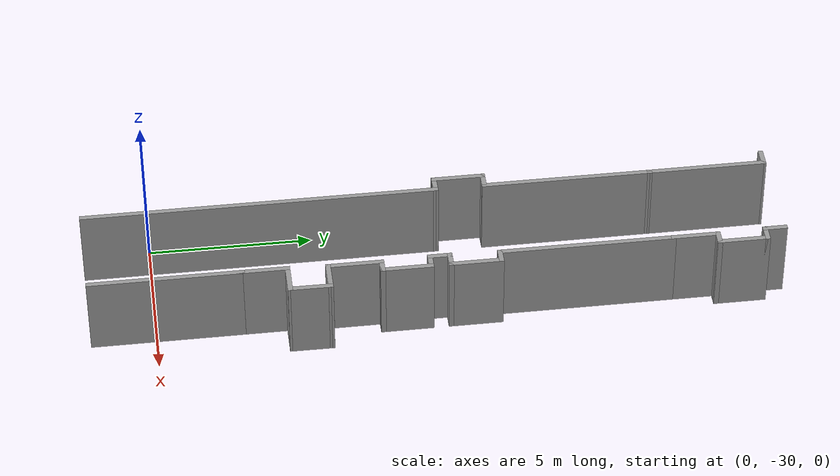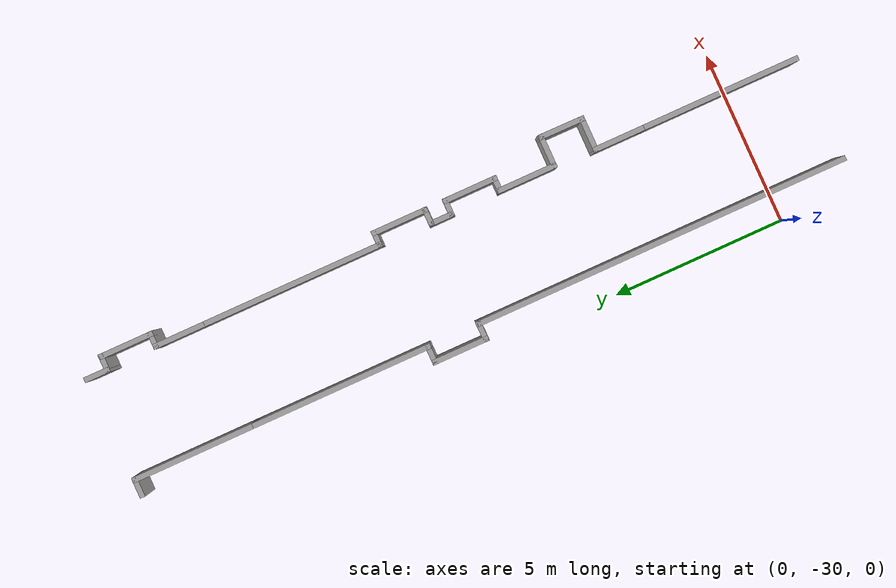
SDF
<sdf version="1.6">
 <model name="volen.world">
  <link name="Wall_146">
   <pose>3.88623 -11.3006 0 0 0 -1.5708</pose>
   <visual name="Wall_146_Visual">
    <pose>0 0 1.25 0 -0 0</pose>
    <geometry><box><size>0.75 0.15 2.5</size></box></geometry>
    <material>
     <script><uri>file://media/materials/scripts/gazebo.material</uri><name>Gazebo/Grey</name></script>
     <ambient>1 1 1 1</ambient>
     <diffuse>0.7 0.7 0.7 1</diffuse>
     <specular>0.01 0.01 0.01 1</specular>
     <emissive>0 0 0 1</emissive>
    </material>
   </visual>
   <collision name="Wall_146_Collision">
    <pose>0 0 1.25 0 -0 0</pose>
    <geometry><box><size>0.75 0.15 2.5</size></box></geometry>
    <surface>
     <friction>
      <ode><mu>1</mu><mu2>1</mu2><fdir1>0 0 0</fdir1><slip1>0</slip1><slip2>0</slip2></ode>
      <torsional>
       <coefficient>1</coefficient>
       <patch_radius>0</patch_radius>
       <surface_radius>0</surface_radius>
       <use_patch_radius>1</use_patch_radius>
       <ode><slip>0</slip></ode>
      </torsional>
     </friction>
     <bounce><restitution_coefficient>0</restitution_coefficient><threshold>1e+06</threshold></bounce>
     <contact>
      <collide_without_contact>0</collide_without_contact>
      <collide_without_contact_bitmask>1</collide_without_contact_bitmask>
      <collide_bitmask>1</collide_bitmask>
      <ode>
       <soft_cfm>0</soft_cfm>
       <soft_erp>0.2</soft_erp>
       <kp>1e+13</kp>
       <kd>1</kd>
       <max_vel>0.01</max_vel>
       <min_depth>0</min_depth>
      </ode>
      <bullet>
       <split_impulse>1</split_impulse>
       <split_impulse_penetration_threshold>-0.01</split_impulse_penetration_threshold>
       <soft_cfm>0</soft_cfm>
       <soft_erp>0.2</soft_erp>
       <kp>1e+13</kp>
       <kd>1</kd>
      </bullet>
     </contact>
    </surface>
   </collision>
  </link>
  <link name="Wall_147">
   <pose>4.08623 -11.6006 0 0 -0 0</pose>
   <visual name="Wall_147_Visual">
    <pose>0 0 1.25 0 -0 0</pose>
    <geometry><box><size>0.55 0.15 2.5</size></box></geometry>
    <material>
     <script><uri>file://media/materials/scripts/gazebo.material</uri><name>Gazebo/Grey</name></script>
     <ambient>1 1 1 1</ambient>
     <diffuse>0.7 0.7 0.7 1</diffuse>
     <specular>0.01 0.01 0.01 1</specular>
     <emissive>0 0 0 1</emissive>
    </material>
   </visual>
   <collision name="Wall_147_Collision">
    <pose>0 0 1.25 0 -0 0</pose>
    <geometry><box><size>0.55 0.15 2.5</size></box></geometry>
    <surface>
     <friction>
      <ode><mu>1</mu><mu2>1</mu2><fdir1>0 0 0</fdir1><slip1>0</slip1><slip2>0</slip2></ode>
      <torsional>
       <coefficient>1</coefficient>
       <patch_radius>0</patch_radius>
       <surface_radius>0</surface_radius>
       <use_patch_radius>1</use_patch_radius>
       <ode><slip>0</slip></ode>
      </torsional>
     </friction>
     <bounce><restitution_coefficient>0</restitution_coefficient><threshold>1e+06</threshold></bounce>
     <contact>
      <collide_without_contact>0</collide_without_contact>
      <collide_without_contact_bitmask>1</collide_without_contact_bitmask>
      <collide_bitmask>1</collide_bitmask>
      <ode>
       <soft_cfm>0</soft_cfm>
       <soft_erp>0.2</soft_erp>
       <kp>1e+13</kp>
       <kd>1</kd>
       <max_vel>0.01</max_vel>
       <min_depth>0</min_depth>
      </ode>
      <bullet>
       <split_impulse>1</split_impulse>
       <split_impulse_penetration_threshold>-0.01</split_impulse_penetration_threshold>
       <soft_cfm>0</soft_cfm>
       <soft_erp>0.2</soft_erp>
       <kp>1e+13</kp>
       <kd>1</kd>
      </bullet>
     </contact>
    </surface>
   </collision>
  </link>
  <link name="Wall_149">
   <pose>4.28623 -12.3256 0 0 0 -1.5708</pose>
   <visual name="Wall_149_Visual">
    <pose>0 0 1.25 0 -0 0</pose>
    <geometry><box><size>1.6 0.15 2.5</size></box></geometry>
    <material>
     <script><uri>file://media/materials/scripts/gazebo.material</uri><name>Gazebo/Grey</name></script>
     <ambient>1 1 1 1</ambient>
     <diffuse>0.7 0.7 0.7 1</diffuse>
     <specular>0.01 0.01 0.01 1</specular>
     <emissive>0 0 0 1</emissive>
    </material>
   </visual>
   <collision name="Wall_149_Collision">
    <pose>0 0 1.25 0 -0 0</pose>
    <geometry><box><size>1.6 0.15 2.5</size></box></geometry>
    <surface>
     <friction>
      <ode><mu>1</mu><mu2>1</mu2><fdir1>0 0 0</fdir1><slip1>0</slip1><slip2>0</slip2></ode>
      <torsional>
       <coefficient>1</coefficient>
       <patch_radius>0</patch_radius>
       <surface_radius>0</surface_radius>
       <use_patch_radius>1</use_patch_radius>
       <ode><slip>0</slip></ode>
      </torsional>
     </friction>
     <bounce><restitution_coefficient>0</restitution_coefficient><threshold>1e+06</threshold></bounce>
     <contact>
      <collide_without_contact>0</collide_without_contact>
      <collide_without_contact_bitmask>1</collide_without_contact_bitmask>
      <collide_bitmask>1</collide_bitmask>
      <ode>
       <soft_cfm>0</soft_cfm>
       <soft_erp>0.2</soft_erp>
       <kp>1e+13</kp>
       <kd>1</kd>
       <max_vel>0.01</max_vel>
       <min_depth>0</min_depth>
      </ode>
      <bullet>
       <split_impulse>1</split_impulse>
       <split_impulse_penetration_threshold>-0.01</split_impulse_penetration_threshold>
       <soft_cfm>0</soft_cfm>
       <soft_erp>0.2</soft_erp>
       <kp>1e+13</kp>
       <kd>1</kd>
      </bullet>
     </contact>
    </surface>
   </collision>
  </link>
  <link name="Wall_151">
   <pose>4.11123 -13.0506 0 0 -0 3.14159</pose>
   <visual name="Wall_151_Visual">
    <pose>0 0 1.25 0 -0 0</pose>
    <geometry><box><size>0.5 0.15 2.5</size></box></geometry>
    <material>
     <script><uri>file://media/materials/scripts/gazebo.material</uri><name>Gazebo/Grey</name></script>
     <ambient>1 1 1 1</ambient>
     <diffuse>0.7 0.7 0.7 1</diffuse>
     <specular>0.01 0.01 0.01 1</specular>
     <emissive>0 0 0 1</emissive>
    </material>
   </visual>
   <collision name="Wall_151_Collision">
    <pose>0 0 1.25 0 -0 0</pose>
    <geometry><box><size>0.5 0.15 2.5</size></box></geometry>
    <surface>
     <friction>
      <ode><mu>1</mu><mu2>1</mu2><fdir1>0 0 0</fdir1><slip1>0</slip1><slip2>0</slip2></ode>
      <torsional>
       <coefficient>1</coefficient>
       <patch_radius>0</patch_radius>
       <surface_radius>0</surface_radius>
       <use_patch_radius>1</use_patch_radius>
       <ode><slip>0</slip></ode>
      </torsional>
     </friction>
     <bounce><restitution_coefficient>0</restitution_coefficient><threshold>1e+06</threshold></bounce>
     <contact>
      <collide_without_contact>0</collide_without_contact>
      <collide_without_contact_bitmask>1</collide_without_contact_bitmask>
      <collide_bitmask>1</collide_bitmask>
      <ode>
       <soft_cfm>0</soft_cfm>
       <soft_erp>0.2</soft_erp>
       <kp>1e+13</kp>
       <kd>1</kd>
       <max_vel>0.01</max_vel>
       <min_depth>0</min_depth>
      </ode>
      <bullet>
       <split_impulse>1</split_impulse>
       <split_impulse_penetration_threshold>-0.01</split_impulse_penetration_threshold>
       <soft_cfm>0</soft_cfm>
       <soft_erp>0.2</soft_erp>
       <kp>1e+13</kp>
       <kd>1</kd>
      </bullet>
     </contact>
    </surface>
   </collision>
  </link>
  <link name="Wall_152">
   <pose>3.93623 -13.7256 0 0 0 -1.5708</pose>
   <visual name="Wall_152_Visual">
    <pose>0 0 1.25 0 -0 0</pose>
    <geometry><box><size>1.5 0.15 2.5</size></box></geometry>
    <material>
     <script><uri>file://media/materials/scripts/gazebo.material</uri><name>Gazebo/Grey</name></script>
     <ambient>1 1 1 1</ambient>
     <diffuse>0.7 0.7 0.7 1</diffuse>
     <specular>0.01 0.01 0.01 1</specular>
     <emissive>0 0 0 1</emissive>
    </material>
   </visual>
   <collision name="Wall_152_Collision">
    <pose>0 0 1.25 0 -0 0</pose>
    <geometry><box><size>1.5 0.15 2.5</size></box></geometry>
    <surface>
     <friction>
      <ode><mu>1</mu><mu2>1</mu2><fdir1>0 0 0</fdir1><slip1>0</slip1><slip2>0</slip2></ode>
      <torsional>
       <coefficient>1</coefficient>
       <patch_radius>0</patch_radius>
       <surface_radius>0</surface_radius>
       <use_patch_radius>1</use_patch_radius>
       <ode><slip>0</slip></ode>
      </torsional>
     </friction>
     <bounce><restitution_coefficient>0</restitution_coefficient><threshold>1e+06</threshold></bounce>
     <contact>
      <collide_without_contact>0</collide_without_contact>
      <collide_without_contact_bitmask>1</collide_without_contact_bitmask>
      <collide_bitmask>1</collide_bitmask>
      <ode>
       <soft_cfm>0</soft_cfm>
       <soft_erp>0.2</soft_erp>
       <kp>1e+13</kp>
       <kd>1</kd>
       <max_vel>0.01</max_vel>
       <min_depth>0</min_depth>
      </ode>
      <bullet>
       <split_impulse>1</split_impulse>
       <split_impulse_penetration_threshold>-0.01</split_impulse_penetration_threshold>
       <soft_cfm>0</soft_cfm>
       <soft_erp>0.2</soft_erp>
       <kp>1e+13</kp>
       <kd>1</kd>
      </bullet>
     </contact>
    </surface>
   </collision>
  </link>
  <link name="Wall_154">
   <pose>3.93623 -17.0256 0 0 0 -1.5708</pose>
   <visual name="Wall_154_Visual">
    <pose>0 0 1.25 0 -0 0</pose>
    <geometry><box><size>5.4 0.15 2.5</size></box></geometry>
    <material>
     <script><uri>file://media/materials/scripts/gazebo.material</uri><name>Gazebo/Grey</name></script>
     <ambient>1 1 1 1</ambient>
     <diffuse>0.7 0.7 0.7 1</diffuse>
     <specular>0.01 0.01 0.01 1</specular>
     <emissive>0 0 0 1</emissive>
    </material>
   </visual>
   <collision name="Wall_154_Collision">
    <pose>0 0 1.25 0 -0 0</pose>
    <geometry><box><size>5.4 0.15 2.5</size></box></geometry>
    <surface>
     <friction>
      <ode><mu>1</mu><mu2>1</mu2><fdir1>0 0 0</fdir1><slip1>0</slip1><slip2>0</slip2></ode>
      <torsional>
       <coefficient>1</coefficient>
       <patch_radius>0</patch_radius>
       <surface_radius>0</surface_radius>
       <use_patch_radius>1</use_patch_radius>
       <ode><slip>0</slip></ode>
      </torsional>
     </friction>
     <bounce><restitution_coefficient>0</restitution_coefficient><threshold>1e+06</threshold></bounce>
     <contact>
      <collide_without_contact>0</collide_without_contact>
      <collide_without_contact_bitmask>1</collide_without_contact_bitmask>
      <collide_bitmask>1</collide_bitmask>
      <ode>
       <soft_cfm>0</soft_cfm>
       <soft_erp>0.2</soft_erp>
       <kp>1e+13</kp>
       <kd>1</kd>
       <max_vel>0.01</max_vel>
       <min_depth>0</min_depth>
      </ode>
      <bullet>
       <split_impulse>1</split_impulse>
       <split_impulse_penetration_threshold>-0.01</split_impulse_penetration_threshold>
       <soft_cfm>0</soft_cfm>
       <soft_erp>0.2</soft_erp>
       <kp>1e+13</kp>
       <kd>1</kd>
      </bullet>
     </contact>
    </surface>
   </collision>
  </link>
  <link name="Wall_156">
   <pose>4.11123 -19.6506 0 0 -0 0</pose>
   <visual name="Wall_156_Visual">
    <pose>0 0 1.25 0 -0 0</pose>
    <geometry><box><size>0.5 0.15 2.5</size></box></geometry>
    <material>
     <script><uri>file://media/materials/scripts/gazebo.material</uri><name>Gazebo/Grey</name></script>
     <ambient>1 1 1 1</ambient>
     <diffuse>0.7 0.7 0.7 1</diffuse>
     <specular>0.01 0.01 0.01 1</specular>
     <emissive>0 0 0 1</emissive>
    </material>
   </visual>
   <collision name="Wall_156_Collision">
    <pose>0 0 1.25 0 -0 0</pose>
    <geometry><box><size>0.5 0.15 2.5</size></box></geometry>
    <surface>
     <friction>
      <ode><mu>1</mu><mu2>1</mu2><fdir1>0 0 0</fdir1><slip1>0</slip1><slip2>0</slip2></ode>
      <torsional>
       <coefficient>1</coefficient>
       <patch_radius>0</patch_radius>
       <surface_radius>0</surface_radius>
       <use_patch_radius>1</use_patch_radius>
       <ode><slip>0</slip></ode>
      </torsional>
     </friction>
     <bounce><restitution_coefficient>0</restitution_coefficient><threshold>1e+06</threshold></bounce>
     <contact>
      <collide_without_contact>0</collide_without_contact>
      <collide_without_contact_bitmask>1</collide_without_contact_bitmask>
      <collide_bitmask>1</collide_bitmask>
      <ode>
       <soft_cfm>0</soft_cfm>
       <soft_erp>0.2</soft_erp>
       <kp>1e+13</kp>
       <kd>1</kd>
       <max_vel>0.01</max_vel>
       <min_depth>0</min_depth>
      </ode>
      <bullet>
       <split_impulse>1</split_impulse>
       <split_impulse_penetration_threshold>-0.01</split_impulse_penetration_threshold>
       <soft_cfm>0</soft_cfm>
       <soft_erp>0.2</soft_erp>
       <kp>1e+13</kp>
       <kd>1</kd>
      </bullet>
     </contact>
    </surface>
   </collision>
  </link>
  <link name="Wall_157">
   <pose>4.28623 -20.4006 0 0 0 -1.5708</pose>
   <visual name="Wall_157_Visual">
    <pose>0 0 1.25 0 -0 0</pose>
    <geometry><box><size>1.65 0.15 2.5</size></box></geometry>
    <material>
     <script><uri>file://media/materials/scripts/gazebo.material</uri><name>Gazebo/Grey</name></script>
     <ambient>1 1 1 1</ambient>
     <diffuse>0.7 0.7 0.7 1</diffuse>
     <specular>0.01 0.01 0.01 1</specular>
     <emissive>0 0 0 1</emissive>
    </material>
   </visual>
   <collision name="Wall_157_Collision">
    <pose>0 0 1.25 0 -0 0</pose>
    <geometry><box><size>1.65 0.15 2.5</size></box></geometry>
    <surface>
     <friction>
      <ode><mu>1</mu><mu2>1</mu2><fdir1>0 0 0</fdir1><slip1>0</slip1><slip2>0</slip2></ode>
      <torsional>
       <coefficient>1</coefficient>
       <patch_radius>0</patch_radius>
       <surface_radius>0</surface_radius>
       <use_patch_radius>1</use_patch_radius>
       <ode><slip>0</slip></ode>
      </torsional>
     </friction>
     <bounce><restitution_coefficient>0</restitution_coefficient><threshold>1e+06</threshold></bounce>
     <contact>
      <collide_without_contact>0</collide_without_contact>
      <collide_without_contact_bitmask>1</collide_without_contact_bitmask>
      <collide_bitmask>1</collide_bitmask>
      <ode>
       <soft_cfm>0</soft_cfm>
       <soft_erp>0.2</soft_erp>
       <kp>1e+13</kp>
       <kd>1</kd>
       <max_vel>0.01</max_vel>
       <min_depth>0</min_depth>
      </ode>
      <bullet>
       <split_impulse>1</split_impulse>
       <split_impulse_penetration_threshold>-0.01</split_impulse_penetration_threshold>
       <soft_cfm>0</soft_cfm>
       <soft_erp>0.2</soft_erp>
       <kp>1e+13</kp>
       <kd>1</kd>
      </bullet>
     </contact>
    </surface>
   </collision>
  </link>
  <link name="Wall_159">
   <pose>4.08623 -21.1506 0 0 -0 3.14159</pose>
   <visual name="Wall_159_Visual">
    <pose>0 0 1.25 0 -0 0</pose>
    <geometry><box><size>0.55 0.15 2.5</size></box></geometry>
    <material>
     <script><uri>file://media/materials/scripts/gazebo.material</uri><name>Gazebo/Grey</name></script>
     <ambient>1 1 1 1</ambient>
     <diffuse>0.7 0.7 0.7 1</diffuse>
     <specular>0.01 0.01 0.01 1</specular>
     <emissive>0 0 0 1</emissive>
    </material>
   </visual>
   <collision name="Wall_159_Collision">
    <pose>0 0 1.25 0 -0 0</pose>
    <geometry><box><size>0.55 0.15 2.5</size></box></geometry>
    <surface>
     <friction>
      <ode><mu>1</mu><mu2>1</mu2><fdir1>0 0 0</fdir1><slip1>0</slip1><slip2>0</slip2></ode>
      <torsional>
       <coefficient>1</coefficient>
       <patch_radius>0</patch_radius>
       <surface_radius>0</surface_radius>
       <use_patch_radius>1</use_patch_radius>
       <ode><slip>0</slip></ode>
      </torsional>
     </friction>
     <bounce><restitution_coefficient>0</restitution_coefficient><threshold>1e+06</threshold></bounce>
     <contact>
      <collide_without_contact>0</collide_without_contact>
      <collide_without_contact_bitmask>1</collide_without_contact_bitmask>
      <collide_bitmask>1</collide_bitmask>
      <ode>
       <soft_cfm>0</soft_cfm>
       <soft_erp>0.2</soft_erp>
       <kp>1e+13</kp>
       <kd>1</kd>
       <max_vel>0.01</max_vel>
       <min_depth>0</min_depth>
      </ode>
      <bullet>
       <split_impulse>1</split_impulse>
       <split_impulse_penetration_threshold>-0.01</split_impulse_penetration_threshold>
       <soft_cfm>0</soft_cfm>
       <soft_erp>0.2</soft_erp>
       <kp>1e+13</kp>
       <kd>1</kd>
      </bullet>
     </contact>
    </surface>
   </collision>
  </link>
  <link name="Wall_161">
   <pose>3.88623 -21.4506 0 0 0 -1.5708</pose>
   <visual name="Wall_161_Visual">
    <pose>0 0 1.25 0 -0 0</pose>
    <geometry><box><size>0.75 0.15 2.5</size></box></geometry>
    <material>
     <script><uri>file://media/materials/scripts/gazebo.material</uri><name>Gazebo/Grey</name></script>
     <ambient>1 1 1 1</ambient>
     <diffuse>0.7 0.7 0.7 1</diffuse>
     <specular>0.01 0.01 0.01 1</specular>
     <emissive>0 0 0 1</emissive>
    </material>
   </visual>
   <collision name="Wall_161_Collision">
    <pose>0 0 1.25 0 -0 0</pose>
    <geometry><box><size>0.75 0.15 2.5</size></box></geometry>
    <surface>
     <friction>
      <ode><mu>1</mu><mu2>1</mu2><fdir1>0 0 0</fdir1><slip1>0</slip1><slip2>0</slip2></ode>
      <torsional>
       <coefficient>1</coefficient>
       <patch_radius>0</patch_radius>
       <surface_radius>0</surface_radius>
       <use_patch_radius>1</use_patch_radius>
       <ode><slip>0</slip></ode>
      </torsional>
     </friction>
     <bounce><restitution_coefficient>0</restitution_coefficient><threshold>1e+06</threshold></bounce>
     <contact>
      <collide_without_contact>0</collide_without_contact>
      <collide_without_contact_bitmask>1</collide_without_contact_bitmask>
      <collide_bitmask>1</collide_bitmask>
      <ode>
       <soft_cfm>0</soft_cfm>
       <soft_erp>0.2</soft_erp>
       <kp>1e+13</kp>
       <kd>1</kd>
       <max_vel>0.01</max_vel>
       <min_depth>0</min_depth>
      </ode>
      <bullet>
       <split_impulse>1</split_impulse>
       <split_impulse_penetration_threshold>-0.01</split_impulse_penetration_threshold>
       <soft_cfm>0</soft_cfm>
       <soft_erp>0.2</soft_erp>
       <kp>1e+13</kp>
       <kd>1</kd>
      </bullet>
     </contact>
    </surface>
   </collision>
  </link>
  <link name="Wall_162">
   <pose>4.08623 -21.7506 0 0 -0 0</pose>
   <visual name="Wall_162_Visual">
    <pose>0 0 1.25 0 -0 0</pose>
    <geometry><box><size>0.55 0.15 2.5</size></box></geometry>
    <material>
     <script><uri>file://media/materials/scripts/gazebo.material</uri><name>Gazebo/Grey</name></script>
     <ambient>1 1 1 1</ambient>
     <diffuse>0.7 0.7 0.7 1</diffuse>
     <specular>0.01 0.01 0.01 1</specular>
     <emissive>0 0 0 1</emissive>
    </material>
   </visual>
   <collision name="Wall_162_Collision">
    <pose>0 0 1.25 0 -0 0</pose>
    <geometry><box><size>0.55 0.15 2.5</size></box></geometry>
    <surface>
     <friction>
      <ode><mu>1</mu><mu2>1</mu2><fdir1>0 0 0</fdir1><slip1>0</slip1><slip2>0</slip2></ode>
      <torsional>
       <coefficient>1</coefficient>
       <patch_radius>0</patch_radius>
       <surface_radius>0</surface_radius>
       <use_patch_radius>1</use_patch_radius>
       <ode><slip>0</slip></ode>
      </torsional>
     </friction>
     <bounce><restitution_coefficient>0</restitution_coefficient><threshold>1e+06</threshold></bounce>
     <contact>
      <collide_without_contact>0</collide_without_contact>
      <collide_without_contact_bitmask>1</collide_without_contact_bitmask>
      <collide_bitmask>1</collide_bitmask>
      <ode>
       <soft_cfm>0</soft_cfm>
       <soft_erp>0.2</soft_erp>
       <kp>1e+13</kp>
       <kd>1</kd>
       <max_vel>0.01</max_vel>
       <min_depth>0</min_depth>
      </ode>
      <bullet>
       <split_impulse>1</split_impulse>
       <split_impulse_penetration_threshold>-0.01</split_impulse_penetration_threshold>
       <soft_cfm>0</soft_cfm>
       <soft_erp>0.2</soft_erp>
       <kp>1e+13</kp>
       <kd>1</kd>
      </bullet>
     </contact>
    </surface>
   </collision>
  </link>
  <link name="Wall_166">
   <pose>4.28623 -22.4756 0 0 0 -1.5708</pose>
   <visual name="Wall_166_Visual">
    <pose>0 0 1.25 0 -0 0</pose>
    <geometry><box><size>1.6 0.15 2.5</size></box></geometry>
    <material>
     <script><uri>file://media/materials/scripts/gazebo.material</uri><name>Gazebo/Grey</name></script>
     <ambient>1 1 1 1</ambient>
     <diffuse>0.7 0.7 0.7 1</diffuse>
     <specular>0.01 0.01 0.01 1</specular>
     <emissive>0 0 0 1</emissive>
    </material>
   </visual>
   <collision name="Wall_166_Collision">
    <pose>0 0 1.25 0 -0 0</pose>
    <geometry><box><size>1.6 0.15 2.5</size></box></geometry>
    <surface>
     <friction>
      <ode><mu>1</mu><mu2>1</mu2><fdir1>0 0 0</fdir1><slip1>0</slip1><slip2>0</slip2></ode>
      <torsional>
       <coefficient>1</coefficient>
       <patch_radius>0</patch_radius>
       <surface_radius>0</surface_radius>
       <use_patch_radius>1</use_patch_radius>
       <ode><slip>0</slip></ode>
      </torsional>
     </friction>
     <bounce><restitution_coefficient>0</restitution_coefficient><threshold>1e+06</threshold></bounce>
     <contact>
      <collide_without_contact>0</collide_without_contact>
      <collide_without_contact_bitmask>1</collide_without_contact_bitmask>
      <collide_bitmask>1</collide_bitmask>
      <ode>
       <soft_cfm>0</soft_cfm>
       <soft_erp>0.2</soft_erp>
       <kp>1e+13</kp>
       <kd>1</kd>
       <max_vel>0.01</max_vel>
       <min_depth>0</min_depth>
      </ode>
      <bullet>
       <split_impulse>1</split_impulse>
       <split_impulse_penetration_threshold>-0.01</split_impulse_penetration_threshold>
       <soft_cfm>0</soft_cfm>
       <soft_erp>0.2</soft_erp>
       <kp>1e+13</kp>
       <kd>1</kd>
      </bullet>
     </contact>
    </surface>
   </collision>
  </link>
  <link name="Wall_168">
   <pose>4.11123 -23.2006 0 0 -0 3.14159</pose>
   <visual name="Wall_168_Visual">
    <pose>0 0 1.25 0 -0 0</pose>
    <geometry><box><size>0.5 0.15 2.5</size></box></geometry>
    <material>
     <script><uri>file://media/materials/scripts/gazebo.material</uri><name>Gazebo/Grey</name></script>
     <ambient>1 1 1 1</ambient>
     <diffuse>0.7 0.7 0.7 1</diffuse>
     <specular>0.01 0.01 0.01 1</specular>
     <emissive>0 0 0 1</emissive>
    </material>
   </visual>
   <collision name="Wall_168_Collision">
    <pose>0 0 1.25 0 -0 0</pose>
    <geometry><box><size>0.5 0.15 2.5</size></box></geometry>
    <surface>
     <friction>
      <ode><mu>1</mu><mu2>1</mu2><fdir1>0 0 0</fdir1><slip1>0</slip1><slip2>0</slip2></ode>
      <torsional>
       <coefficient>1</coefficient>
       <patch_radius>0</patch_radius>
       <surface_radius>0</surface_radius>
       <use_patch_radius>1</use_patch_radius>
       <ode><slip>0</slip></ode>
      </torsional>
     </friction>
     <bounce><restitution_coefficient>0</restitution_coefficient><threshold>1e+06</threshold></bounce>
     <contact>
      <collide_without_contact>0</collide_without_contact>
      <collide_without_contact_bitmask>1</collide_without_contact_bitmask>
      <collide_bitmask>1</collide_bitmask>
      <ode>
       <soft_cfm>0</soft_cfm>
       <soft_erp>0.2</soft_erp>
       <kp>1e+13</kp>
       <kd>1</kd>
       <max_vel>0.01</max_vel>
       <min_depth>0</min_depth>
      </ode>
      <bullet>
       <split_impulse>1</split_impulse>
       <split_impulse_penetration_threshold>-0.01</split_impulse_penetration_threshold>
       <soft_cfm>0</soft_cfm>
       <soft_erp>0.2</soft_erp>
       <kp>1e+13</kp>
       <kd>1</kd>
      </bullet>
     </contact>
    </surface>
   </collision>
  </link>
  <link name="Wall_169">
   <pose>3.93623 -24.0006 0 0 0 -1.5708</pose>
   <visual name="Wall_169_Visual">
    <pose>0 0 1.25 0 -0 0</pose>
    <geometry><box><size>1.75 0.15 2.5</size></box></geometry>
    <material>
     <script><uri>file://media/materials/scripts/gazebo.material</uri><name>Gazebo/Grey</name></script>
     <ambient>1 1 1 1</ambient>
     <diffuse>0.7 0.7 0.7 1</diffuse>
     <specular>0.01 0.01 0.01 1</specular>
     <emissive>0 0 0 1</emissive>
    </material>
   </visual>
   <collision name="Wall_169_Collision">
    <pose>0 0 1.25 0 -0 0</pose>
    <geometry><box><size>1.75 0.15 2.5</size></box></geometry>
    <surface>
     <friction>
      <ode><mu>1</mu><mu2>1</mu2><fdir1>0 0 0</fdir1><slip1>0</slip1><slip2>0</slip2></ode>
      <torsional>
       <coefficient>1</coefficient>
       <patch_radius>0</patch_radius>
       <surface_radius>0</surface_radius>
       <use_patch_radius>1</use_patch_radius>
       <ode><slip>0</slip></ode>
      </torsional>
     </friction>
     <bounce><restitution_coefficient>0</restitution_coefficient><threshold>1e+06</threshold></bounce>
     <contact>
      <collide_without_contact>0</collide_without_contact>
      <collide_without_contact_bitmask>1</collide_without_contact_bitmask>
      <collide_bitmask>1</collide_bitmask>
      <ode>
       <soft_cfm>0</soft_cfm>
       <soft_erp>0.2</soft_erp>
       <kp>1e+13</kp>
       <kd>1</kd>
       <max_vel>0.01</max_vel>
       <min_depth>0</min_depth>
      </ode>
      <bullet>
       <split_impulse>1</split_impulse>
       <split_impulse_penetration_threshold>-0.01</split_impulse_penetration_threshold>
       <soft_cfm>0</soft_cfm>
       <soft_erp>0.2</soft_erp>
       <kp>1e+13</kp>
       <kd>1</kd>
      </bullet>
     </contact>
    </surface>
   </collision>
  </link>
  <link name="Wall_170">
   <pose>4.36123 -24.8006 0 0 -0 0</pose>
   <visual name="Wall_170_Visual">
    <pose>0 0 1.25 0 -0 0</pose>
    <geometry><box><size>1 0.15 2.5</size></box></geometry>
    <material>
     <script><uri>file://media/materials/scripts/gazebo.material</uri><name>Gazebo/Grey</name></script>
     <ambient>1 1 1 1</ambient>
     <diffuse>0.7 0.7 0.7 1</diffuse>
     <specular>0.01 0.01 0.01 1</specular>
     <emissive>0 0 0 1</emissive>
    </material>
   </visual>
   <collision name="Wall_170_Collision">
    <pose>0 0 1.25 0 -0 0</pose>
    <geometry><box><size>1 0.15 2.5</size></box></geometry>
    <surface>
     <friction>
      <ode><mu>1</mu><mu2>1</mu2><fdir1>0 0 0</fdir1><slip1>0</slip1><slip2>0</slip2></ode>
      <torsional>
       <coefficient>1</coefficient>
       <patch_radius>0</patch_radius>
       <surface_radius>0</surface_radius>
       <use_patch_radius>1</use_patch_radius>
       <ode><slip>0</slip></ode>
      </torsional>
     </friction>
     <bounce><restitution_coefficient>0</restitution_coefficient><threshold>1e+06</threshold></bounce>
     <contact>
      <collide_without_contact>0</collide_without_contact>
      <collide_without_contact_bitmask>1</collide_without_contact_bitmask>
      <collide_bitmask>1</collide_bitmask>
      <ode>
       <soft_cfm>0</soft_cfm>
       <soft_erp>0.2</soft_erp>
       <kp>1e+13</kp>
       <kd>1</kd>
       <max_vel>0.01</max_vel>
       <min_depth>0</min_depth>
      </ode>
      <bullet>
       <split_impulse>1</split_impulse>
       <split_impulse_penetration_threshold>-0.01</split_impulse_penetration_threshold>
       <soft_cfm>0</soft_cfm>
       <soft_erp>0.2</soft_erp>
       <kp>1e+13</kp>
       <kd>1</kd>
      </bullet>
     </contact>
    </surface>
   </collision>
  </link>
  <link name="Wall_172">
   <pose>4.78193 -25.4006 0 0 0 -1.57796</pose>
   <visual name="Wall_172_Visual">
    <pose>0 0 1.25 0 -0 0</pose>
    <geometry><box><size>1.35 0.15 2.5</size></box></geometry>
    <material>
     <script><uri>file://media/materials/scripts/gazebo.material</uri><name>Gazebo/Grey</name></script>
     <ambient>1 1 1 1</ambient>
     <diffuse>0.7 0.7 0.7 1</diffuse>
     <specular>0.01 0.01 0.01 1</specular>
     <emissive>0 0 0 1</emissive>
    </material>
   </visual>
   <collision name="Wall_172_Collision">
    <pose>0 0 1.25 0 -0 0</pose>
    <geometry><box><size>1.35 0.15 2.5</size></box></geometry>
    <surface>
     <friction>
      <ode><mu>1</mu><mu2>1</mu2><fdir1>0 0 0</fdir1><slip1>0</slip1><slip2>0</slip2></ode>
      <torsional>
       <coefficient>1</coefficient>
       <patch_radius>0</patch_radius>
       <surface_radius>0</surface_radius>
       <use_patch_radius>1</use_patch_radius>
       <ode><slip>0</slip></ode>
      </torsional>
     </friction>
     <bounce><restitution_coefficient>0</restitution_coefficient><threshold>1e+06</threshold></bounce>
     <contact>
      <collide_without_contact>0</collide_without_contact>
      <collide_without_contact_bitmask>1</collide_without_contact_bitmask>
      <collide_bitmask>1</collide_bitmask>
      <ode>
       <soft_cfm>0</soft_cfm>
       <soft_erp>0.2</soft_erp>
       <kp>1e+13</kp>
       <kd>1</kd>
       <max_vel>0.01</max_vel>
       <min_depth>0</min_depth>
      </ode>
      <bullet>
       <split_impulse>1</split_impulse>
       <split_impulse_penetration_threshold>-0.01</split_impulse_penetration_threshold>
       <soft_cfm>0</soft_cfm>
       <soft_erp>0.2</soft_erp>
       <kp>1e+13</kp>
       <kd>1</kd>
      </bullet>
     </contact>
    </surface>
   </collision>
  </link>
  <link name="Wall_174">
   <pose>4.32763 -26.0006 0 0 -0 3.14159</pose>
   <visual name="Wall_174_Visual">
    <pose>0 0 1.25 0 -0 0</pose>
    <geometry><box><size>1.05 0.15 2.5</size></box></geometry>
    <material>
     <script><uri>file://media/materials/scripts/gazebo.material</uri><name>Gazebo/Grey</name></script>
     <ambient>1 1 1 1</ambient>
     <diffuse>0.7 0.7 0.7 1</diffuse>
     <specular>0.01 0.01 0.01 1</specular>
     <emissive>0 0 0 1</emissive>
    </material>
   </visual>
   <collision name="Wall_174_Collision">
    <pose>0 0 1.25 0 -0 0</pose>
    <geometry><box><size>1.05 0.15 2.5</size></box></geometry>
    <surface>
     <friction>
      <ode><mu>1</mu><mu2>1</mu2><fdir1>0 0 0</fdir1><slip1>0</slip1><slip2>0</slip2></ode>
      <torsional>
       <coefficient>1</coefficient>
       <patch_radius>0</patch_radius>
       <surface_radius>0</surface_radius>
       <use_patch_radius>1</use_patch_radius>
       <ode><slip>0</slip></ode>
      </torsional>
     </friction>
     <bounce><restitution_coefficient>0</restitution_coefficient><threshold>1e+06</threshold></bounce>
     <contact>
      <collide_without_contact>0</collide_without_contact>
      <collide_without_contact_bitmask>1</collide_without_contact_bitmask>
      <collide_bitmask>1</collide_bitmask>
      <ode>
       <soft_cfm>0</soft_cfm>
       <soft_erp>0.2</soft_erp>
       <kp>1e+13</kp>
       <kd>1</kd>
       <max_vel>0.01</max_vel>
       <min_depth>0</min_depth>
      </ode>
      <bullet>
       <split_impulse>1</split_impulse>
       <split_impulse_penetration_threshold>-0.01</split_impulse_penetration_threshold>
       <soft_cfm>0</soft_cfm>
       <soft_erp>0.2</soft_erp>
       <kp>1e+13</kp>
       <kd>1</kd>
      </bullet>
     </contact>
    </surface>
   </collision>
  </link>
  <link name="Wall_176">
   <pose>3.87743 -26.6756 0 0 0 -1.57109</pose>
   <visual name="Wall_176_Visual">
    <pose>0 0 1.25 0 -0 0</pose>
    <geometry><box><size>1.5 0.15 2.5</size></box></geometry>
    <material>
     <script><uri>file://media/materials/scripts/gazebo.material</uri><name>Gazebo/Grey</name></script>
     <ambient>1 1 1 1</ambient>
     <diffuse>0.7 0.7 0.7 1</diffuse>
     <specular>0.01 0.01 0.01 1</specular>
     <emissive>0 0 0 1</emissive>
    </material>
   </visual>
   <collision name="Wall_176_Collision">
    <pose>0 0 1.25 0 -0 0</pose>
    <geometry><box><size>1.5 0.15 2.5</size></box></geometry>
    <surface>
     <friction>
      <ode><mu>1</mu><mu2>1</mu2><fdir1>0 0 0</fdir1><slip1>0</slip1><slip2>0</slip2></ode>
      <torsional>
       <coefficient>1</coefficient>
       <patch_radius>0</patch_radius>
       <surface_radius>0</surface_radius>
       <use_patch_radius>1</use_patch_radius>
       <ode><slip>0</slip></ode>
      </torsional>
     </friction>
     <bounce><restitution_coefficient>0</restitution_coefficient><threshold>1e+06</threshold></bounce>
     <contact>
      <collide_without_contact>0</collide_without_contact>
      <collide_without_contact_bitmask>1</collide_without_contact_bitmask>
      <collide_bitmask>1</collide_bitmask>
      <ode>
       <soft_cfm>0</soft_cfm>
       <soft_erp>0.2</soft_erp>
       <kp>1e+13</kp>
       <kd>1</kd>
       <max_vel>0.01</max_vel>
       <min_depth>0</min_depth>
      </ode>
      <bullet>
       <split_impulse>1</split_impulse>
       <split_impulse_penetration_threshold>-0.01</split_impulse_penetration_threshold>
       <soft_cfm>0</soft_cfm>
       <soft_erp>0.2</soft_erp>
       <kp>1e+13</kp>
       <kd>1</kd>
      </bullet>
     </contact>
    </surface>
   </collision>
  </link>
  <link name="Wall_178">
   <pose>3.87723 -29.6256 0 0 0 -1.5708</pose>
   <visual name="Wall_178_Visual">
    <pose>0 0 1.25 0 -0 0</pose>
    <geometry><box><size>4.7 0.15 2.5</size></box></geometry>
    <material>
     <script><uri>file://media/materials/scripts/gazebo.material</uri><name>Gazebo/Grey</name></script>
     <ambient>1 1 1 1</ambient>
     <diffuse>0.7 0.7 0.7 1</diffuse>
     <specular>0.01 0.01 0.01 1</specular>
     <emissive>0 0 0 1</emissive>
    </material>
   </visual>
   <collision name="Wall_178_Collision">
    <pose>0 0 1.25 0 -0 0</pose>
    <geometry><box><size>4.7 0.15 2.5</size></box></geometry>
    <surface>
     <friction>
      <ode><mu>1</mu><mu2>1</mu2><fdir1>0 0 0</fdir1><slip1>0</slip1><slip2>0</slip2></ode>
      <torsional>
       <coefficient>1</coefficient>
       <patch_radius>0</patch_radius>
       <surface_radius>0</surface_radius>
       <use_patch_radius>1</use_patch_radius>
       <ode><slip>0</slip></ode>
      </torsional>
     </friction>
     <bounce><restitution_coefficient>0</restitution_coefficient><threshold>1e+06</threshold></bounce>
     <contact>
      <collide_without_contact>0</collide_without_contact>
      <collide_without_contact_bitmask>1</collide_without_contact_bitmask>
      <collide_bitmask>1</collide_bitmask>
      <ode>
       <soft_cfm>0</soft_cfm>
       <soft_erp>0.2</soft_erp>
       <kp>1e+13</kp>
       <kd>1</kd>
       <max_vel>0.01</max_vel>
       <min_depth>0</min_depth>
      </ode>
      <bullet>
       <split_impulse>1</split_impulse>
       <split_impulse_penetration_threshold>-0.01</split_impulse_penetration_threshold>
       <soft_cfm>0</soft_cfm>
       <soft_erp>0.2</soft_erp>
       <kp>1e+13</kp>
       <kd>1</kd>
      </bullet>
     </contact>
    </surface>
   </collision>
  </link>
  <link name="Wall_229">
   <pose>0.90223 -26.5786 0 0 -0 1.5708</pose>
   <visual name="Wall_229_Visual">
    <pose>0 0 1.25 0 -0 0</pose>
    <geometry><box><size>10.9 0.15 2.5</size></box></geometry>
    <material>
     <script><uri>file://media/materials/scripts/gazebo.material</uri><name>Gazebo/Grey</name></script>
     <ambient>1 1 1 1</ambient>
     <diffuse>0.7 0.7 0.7 1</diffuse>
     <specular>0.01 0.01 0.01 1</specular>
     <emissive>0 0 0 1</emissive>
    </material>
   </visual>
   <collision name="Wall_229_Collision">
    <pose>0 0 1.25 0 -0 0</pose>
    <geometry><box><size>10.9 0.15 2.5</size></box></geometry>
    <surface>
     <friction>
      <ode><mu>1</mu><mu2>1</mu2><fdir1>0 0 0</fdir1><slip1>0</slip1><slip2>0</slip2></ode>
      <torsional>
       <coefficient>1</coefficient>
       <patch_radius>0</patch_radius>
       <surface_radius>0</surface_radius>
       <use_patch_radius>1</use_patch_radius>
       <ode><slip>0</slip></ode>
      </torsional>
     </friction>
     <bounce><restitution_coefficient>0</restitution_coefficient><threshold>1e+06</threshold></bounce>
     <contact>
      <collide_without_contact>0</collide_without_contact>
      <collide_without_contact_bitmask>1</collide_without_contact_bitmask>
      <collide_bitmask>1</collide_bitmask>
      <ode>
       <soft_cfm>0</soft_cfm>
       <soft_erp>0.2</soft_erp>
       <kp>1e+13</kp>
       <kd>1</kd>
       <max_vel>0.01</max_vel>
       <min_depth>0</min_depth>
      </ode>
      <bullet>
       <split_impulse>1</split_impulse>
       <split_impulse_penetration_threshold>-0.01</split_impulse_penetration_threshold>
       <soft_cfm>0</soft_cfm>
       <soft_erp>0.2</soft_erp>
       <kp>1e+13</kp>
       <kd>1</kd>
      </bullet>
     </contact>
    </surface>
   </collision>
  </link>
  <link name="Wall_232">
   <pose>0.67723 -21.2066 0 0 0 -3.12826</pose>
   <visual name="Wall_232_Visual">
    <pose>0 0 1.25 0 -0 0</pose>
    <geometry><box><size>0.6 0.15 2.5</size></box></geometry>
    <material>
     <script><uri>file://media/materials/scripts/gazebo.material</uri><name>Gazebo/Grey</name></script>
     <ambient>1 1 1 1</ambient>
     <diffuse>0.7 0.7 0.7 1</diffuse>
     <specular>0.01 0.01 0.01 1</specular>
     <emissive>0 0 0 1</emissive>
    </material>
   </visual>
   <collision name="Wall_232_Collision">
    <pose>0 0 1.25 0 -0 0</pose>
    <geometry><box><size>0.6 0.15 2.5</size></box></geometry>
    <surface>
     <friction>
      <ode><mu>1</mu><mu2>1</mu2><fdir1>0 0 0</fdir1><slip1>0</slip1><slip2>0</slip2></ode>
      <torsional>
       <coefficient>1</coefficient>
       <patch_radius>0</patch_radius>
       <surface_radius>0</surface_radius>
       <use_patch_radius>1</use_patch_radius>
       <ode><slip>0</slip></ode>
      </torsional>
     </friction>
     <bounce><restitution_coefficient>0</restitution_coefficient><threshold>1e+06</threshold></bounce>
     <contact>
      <collide_without_contact>0</collide_without_contact>
      <collide_without_contact_bitmask>1</collide_without_contact_bitmask>
      <collide_bitmask>1</collide_bitmask>
      <ode>
       <soft_cfm>0</soft_cfm>
       <soft_erp>0.2</soft_erp>
       <kp>1e+13</kp>
       <kd>1</kd>
       <max_vel>0.01</max_vel>
       <min_depth>0</min_depth>
      </ode>
      <bullet>
       <split_impulse>1</split_impulse>
       <split_impulse_penetration_threshold>-0.01</split_impulse_penetration_threshold>
       <soft_cfm>0</soft_cfm>
       <soft_erp>0.2</soft_erp>
       <kp>1e+13</kp>
       <kd>1</kd>
      </bullet>
     </contact>
    </surface>
   </collision>
  </link>
  <link name="Wall_234">
   <pose>0.45223 -20.4596 0 0 -0 1.5708</pose>
   <visual name="Wall_234_Visual">
    <pose>0 0 1.25 0 -0 0</pose>
    <geometry><box><size>1.65 0.15 2.5</size></box></geometry>
    <material>
     <script><uri>file://media/materials/scripts/gazebo.material</uri><name>Gazebo/Grey</name></script>
     <ambient>1 1 1 1</ambient>
     <diffuse>0.7 0.7 0.7 1</diffuse>
     <specular>0.01 0.01 0.01 1</specular>
     <emissive>0 0 0 1</emissive>
    </material>
   </visual>
   <collision name="Wall_234_Collision">
    <pose>0 0 1.25 0 -0 0</pose>
    <geometry><box><size>1.65 0.15 2.5</size></box></geometry>
    <surface>
     <friction>
      <ode><mu>1</mu><mu2>1</mu2><fdir1>0 0 0</fdir1><slip1>0</slip1><slip2>0</slip2></ode>
      <torsional>
       <coefficient>1</coefficient>
       <patch_radius>0</patch_radius>
       <surface_radius>0</surface_radius>
       <use_patch_radius>1</use_patch_radius>
       <ode><slip>0</slip></ode>
      </torsional>
     </friction>
     <bounce><restitution_coefficient>0</restitution_coefficient><threshold>1e+06</threshold></bounce>
     <contact>
      <collide_without_contact>0</collide_without_contact>
      <collide_without_contact_bitmask>1</collide_without_contact_bitmask>
      <collide_bitmask>1</collide_bitmask>
      <ode>
       <soft_cfm>0</soft_cfm>
       <soft_erp>0.2</soft_erp>
       <kp>1e+13</kp>
       <kd>1</kd>
       <max_vel>0.01</max_vel>
       <min_depth>0</min_depth>
      </ode>
      <bullet>
       <split_impulse>1</split_impulse>
       <split_impulse_penetration_threshold>-0.01</split_impulse_penetration_threshold>
       <soft_cfm>0</soft_cfm>
       <soft_erp>0.2</soft_erp>
       <kp>1e+13</kp>
       <kd>1</kd>
      </bullet>
     </contact>
    </surface>
   </collision>
  </link>
  <link name="Wall_237">
   <pose>0.67723 -19.7096 0 0 -0 0</pose>
   <visual name="Wall_237_Visual">
    <pose>0 0 1.25 0 -0 0</pose>
    <geometry><box><size>0.6 0.15 2.5</size></box></geometry>
    <material>
     <script><uri>file://media/materials/scripts/gazebo.material</uri><name>Gazebo/Grey</name></script>
     <ambient>1 1 1 1</ambient>
     <diffuse>0.7 0.7 0.7 1</diffuse>
     <specular>0.01 0.01 0.01 1</specular>
     <emissive>0 0 0 1</emissive>
    </material>
   </visual>
   <collision name="Wall_237_Collision">
    <pose>0 0 1.25 0 -0 0</pose>
    <geometry><box><size>0.6 0.15 2.5</size></box></geometry>
    <surface>
     <friction>
      <ode><mu>1</mu><mu2>1</mu2><fdir1>0 0 0</fdir1><slip1>0</slip1><slip2>0</slip2></ode>
      <torsional>
       <coefficient>1</coefficient>
       <patch_radius>0</patch_radius>
       <surface_radius>0</surface_radius>
       <use_patch_radius>1</use_patch_radius>
       <ode><slip>0</slip></ode>
      </torsional>
     </friction>
     <bounce><restitution_coefficient>0</restitution_coefficient><threshold>1e+06</threshold></bounce>
     <contact>
      <collide_without_contact>0</collide_without_contact>
      <collide_without_contact_bitmask>1</collide_without_contact_bitmask>
      <collide_bitmask>1</collide_bitmask>
      <ode>
       <soft_cfm>0</soft_cfm>
       <soft_erp>0.2</soft_erp>
       <kp>1e+13</kp>
       <kd>1</kd>
       <max_vel>0.01</max_vel>
       <min_depth>0</min_depth>
      </ode>
      <bullet>
       <split_impulse>1</split_impulse>
       <split_impulse_penetration_threshold>-0.01</split_impulse_penetration_threshold>
       <soft_cfm>0</soft_cfm>
       <soft_erp>0.2</soft_erp>
       <kp>1e+13</kp>
       <kd>1</kd>
      </bullet>
     </contact>
    </surface>
   </collision>
  </link>
  <link name="Wall_240">
   <pose>0.90223 -17.1596 0 0 -0 1.5708</pose>
   <visual name="Wall_240_Visual">
    <pose>0 0 1.25 0 -0 0</pose>
    <geometry><box><size>5.25 0.15 2.5</size></box></geometry>
    <material>
     <script><uri>file://media/materials/scripts/gazebo.material</uri><name>Gazebo/Grey</name></script>
     <ambient>1 1 1 1</ambient>
     <diffuse>0.7 0.7 0.7 1</diffuse>
     <specular>0.01 0.01 0.01 1</specular>
     <emissive>0 0 0 1</emissive>
    </material>
   </visual>
   <collision name="Wall_240_Collision">
    <pose>0 0 1.25 0 -0 0</pose>
    <geometry><box><size>5.25 0.15 2.5</size></box></geometry>
    <surface>
     <friction>
      <ode><mu>1</mu><mu2>1</mu2><fdir1>0 0 0</fdir1><slip1>0</slip1><slip2>0</slip2></ode>
      <torsional>
       <coefficient>1</coefficient>
       <patch_radius>0</patch_radius>
       <surface_radius>0</surface_radius>
       <use_patch_radius>1</use_patch_radius>
       <ode><slip>0</slip></ode>
      </torsional>
     </friction>
     <bounce><restitution_coefficient>0</restitution_coefficient><threshold>1e+06</threshold></bounce>
     <contact>
      <collide_without_contact>0</collide_without_contact>
      <collide_without_contact_bitmask>1</collide_without_contact_bitmask>
      <collide_bitmask>1</collide_bitmask>
      <ode>
       <soft_cfm>0</soft_cfm>
       <soft_erp>0.2</soft_erp>
       <kp>1e+13</kp>
       <kd>1</kd>
       <max_vel>0.01</max_vel>
       <min_depth>0</min_depth>
      </ode>
      <bullet>
       <split_impulse>1</split_impulse>
       <split_impulse_penetration_threshold>-0.01</split_impulse_penetration_threshold>
       <soft_cfm>0</soft_cfm>
       <soft_erp>0.2</soft_erp>
       <kp>1e+13</kp>
       <kd>1</kd>
      </bullet>
     </contact>
    </surface>
   </collision>
  </link>
  <link name="Wall_242">
   <pose>0.89873 -12.8346 0 0 -0 1.57277</pose>
   <visual name="Wall_242_Visual">
    <pose>0 0 1.25 0 -0 0</pose>
    <geometry><box><size>3.7 0.15 2.5</size></box></geometry>
    <material>
     <script><uri>file://media/materials/scripts/gazebo.material</uri><name>Gazebo/Grey</name></script>
     <ambient>1 1 1 1</ambient>
     <diffuse>0.7 0.7 0.7 1</diffuse>
     <specular>0.01 0.01 0.01 1</specular>
     <emissive>0 0 0 1</emissive>
    </material>
   </visual>
   <collision name="Wall_242_Collision">
    <pose>0 0 1.25 0 -0 0</pose>
    <geometry><box><size>3.7 0.15 2.5</size></box></geometry>
    <surface>
     <friction>
      <ode><mu>1</mu><mu2>1</mu2><fdir1>0 0 0</fdir1><slip1>0</slip1><slip2>0</slip2></ode>
      <torsional>
       <coefficient>1</coefficient>
       <patch_radius>0</patch_radius>
       <surface_radius>0</surface_radius>
       <use_patch_radius>1</use_patch_radius>
       <ode><slip>0</slip></ode>
      </torsional>
     </friction>
     <bounce><restitution_coefficient>0</restitution_coefficient><threshold>1e+06</threshold></bounce>
     <contact>
      <collide_without_contact>0</collide_without_contact>
      <collide_without_contact_bitmask>1</collide_without_contact_bitmask>
      <collide_bitmask>1</collide_bitmask>
      <ode>
       <soft_cfm>0</soft_cfm>
       <soft_erp>0.2</soft_erp>
       <kp>1e+13</kp>
       <kd>1</kd>
       <max_vel>0.01</max_vel>
       <min_depth>0</min_depth>
      </ode>
      <bullet>
       <split_impulse>1</split_impulse>
       <split_impulse_penetration_threshold>-0.01</split_impulse_penetration_threshold>
       <soft_cfm>0</soft_cfm>
       <soft_erp>0.2</soft_erp>
       <kp>1e+13</kp>
       <kd>1</kd>
      </bullet>
     </contact>
    </surface>
   </collision>
  </link>
  <link name="Wall_244">
   <pose>0.67023 -11.0596 0 0 -0 3.14159</pose>
   <visual name="Wall_244_Visual">
    <pose>0 0 1.25 0 -0 0</pose>
    <geometry><box><size>0.6 0.15 2.5</size></box></geometry>
    <material>
     <script><uri>file://media/materials/scripts/gazebo.material</uri><name>Gazebo/Grey</name></script>
     <ambient>1 1 1 1</ambient>
     <diffuse>0.7 0.7 0.7 1</diffuse>
     <specular>0.01 0.01 0.01 1</specular>
     <emissive>0 0 0 1</emissive>
    </material>
   </visual>
   <collision name="Wall_244_Collision">
    <pose>0 0 1.25 0 -0 0</pose>
    <geometry><box><size>0.6 0.15 2.5</size></box></geometry>
    <surface>
     <friction>
      <ode><mu>1</mu><mu2>1</mu2><fdir1>0 0 0</fdir1><slip1>0</slip1><slip2>0</slip2></ode>
      <torsional>
       <coefficient>1</coefficient>
       <patch_radius>0</patch_radius>
       <surface_radius>0</surface_radius>
       <use_patch_radius>1</use_patch_radius>
       <ode><slip>0</slip></ode>
      </torsional>
     </friction>
     <bounce><restitution_coefficient>0</restitution_coefficient><threshold>1e+06</threshold></bounce>
     <contact>
      <collide_without_contact>0</collide_without_contact>
      <collide_without_contact_bitmask>1</collide_without_contact_bitmask>
      <collide_bitmask>1</collide_bitmask>
      <ode>
       <soft_cfm>0</soft_cfm>
       <soft_erp>0.2</soft_erp>
       <kp>1e+13</kp>
       <kd>1</kd>
       <max_vel>0.01</max_vel>
       <min_depth>0</min_depth>
      </ode>
      <bullet>
       <split_impulse>1</split_impulse>
       <split_impulse_penetration_threshold>-0.01</split_impulse_penetration_threshold>
       <soft_cfm>0</soft_cfm>
       <soft_erp>0.2</soft_erp>
       <kp>1e+13</kp>
       <kd>1</kd>
      </bullet>
     </contact>
    </surface>
   </collision>
  </link>
  <static>1</static>
 </model>
</sdf>
